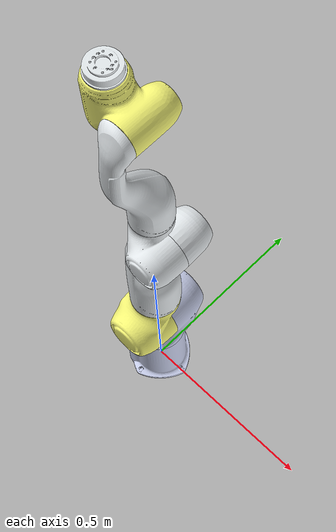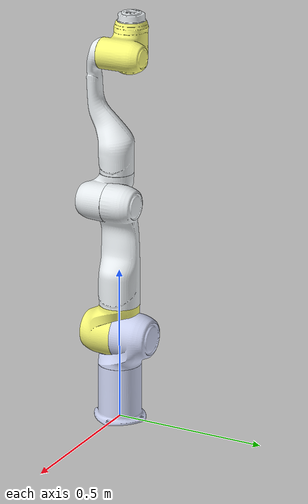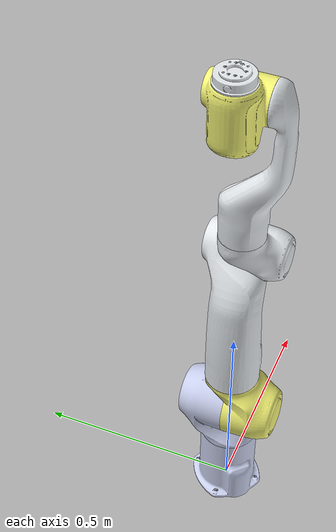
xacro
<?xml version="1.0" encoding="utf-8"?>

<robot xmlns:xacro="http://wiki.ros.org/xacro" name="diana7">
  <link name="world">
      <origin
        xyz="0 0 0"
        rpy="0 0 0" />
  </link>

  <link name="base_link">
    <inertial>
      <origin
        xyz="0.00153097191906452 0.00152031034664837 0.0524230280849149"
        rpy="0 0 0" />
      <mass value="1.33110743457779" />
      <inertia
        ixx="0.00695879790529406"
        ixy="9.99328685258342E-05"
        ixz="7.99577031212481E-05"
        iyy="0.00695365531716522"
        iyz="7.90796997368543E-05"
        izz="0.00729823323321907" />
    </inertial>
    <visual>
      <origin
        xyz="0 0 0"
        rpy="0 0 0" />
      <geometry>
        <mesh filename="package://Diana7_Magnet/meshes/visual/base.obj" />
      </geometry>
      <material name="">
        <color rgba="0.796078431372549 0.823529411764706 0.937254901960784 1" />
      </material>
    </visual>
    <collision>
      <origin
        xyz="0 0 0"
        rpy="0 0 0" />
      <geometry>
        <mesh filename="package://Diana7_Magnet/meshes/collision/base.stl" />
      </geometry>
    </collision>
  </link>

  <joint name="base_joint" type="fixed">
    <parent link="world"/>
    <child link="base_link"/>
  </joint>

  <link name="link_1">
    <inertial>
      <origin
        xyz="5.5234067920554E-05  -0.0254878204920178 0.0355441421264809"
        rpy="0 0 0" />
      <mass value="1.09025546409174" />
      <inertia
        ixx="0.00585031196428369"
        ixy="1.4630349447555E-07"
        ixz="1.35351687162397E-06"
        iyy="0.00645496952227061"
        iyz="-0.00104800484741808"
        izz="0.00459531291521244" />
    </inertial>
    <visual>
      <origin
        xyz="0 0 0"
        rpy="3.1415926531795866 0 0" />
      <geometry>
        <mesh filename="package://Diana7_Magnet/meshes/visual/link_1.obj" />
      </geometry>
      <material name="">
        <color rgba="0.796078431372549 0.823529411764706 0.937254901960784 1" />
      </material>
    </visual>
    <collision>
      <origin
        xyz="0 0 0"
        rpy="3.1415926531795866 0 0" />
      <geometry>
        <mesh filename="package://Diana7_Magnet/meshes/collision/link_1.stl" />
      </geometry>
    </collision>
  </link>

  <joint name="joint_1" type="revolute">
    <origin
      xyz="0.0 -2.9150689157e-12 0.2856"
      rpy="-3.1415926535795866 0.0 -0.0" />
    <parent link="base_link" />
    <child link="link_1" />
    <axis xyz="0 0 1" />
    <limit
      lower="-3.12"
      upper="3.12"
      effort="235"
      velocity="2.61" />
  </joint>

  <link name="link_2">
    <inertial>
      <origin
        xyz="-3.62724763868157E-06 -0.0292741005087307 -0.041280769252073"
        rpy="0 0 0" />
      <mass value="1.09515454908799" />
      <inertia
        ixx="0.00575817488413533"
        ixy="4.92454490330888E-07"
        ixz="-5.75758988171004E-07"
        iyy="0.00452592941277235"
        iyz="0.00135206824645357"
        izz="0.0058904584276842" />
    </inertial>
    <visual>
      <origin
        xyz="0 0 0"
        rpy="0 0 0" />
      <geometry>
        <mesh filename="package://Diana7_Magnet/meshes/visual/link_2.obj" />
      </geometry>
      <material name="">
        <color rgba="0.980392156862745 0.980392156862745 0.470588235294118 1" />
      </material>
    </visual>
    <collision>
      <origin
        xyz="0 0 0"
        rpy="0 0 0" />
      <geometry>
        <mesh filename="package://Diana7_Magnet/meshes/collision/link_2.stl" />
      </geometry>
    </collision>
  </link>

  <joint name="joint_2" type="revolute">
    <origin
      xyz="0.0 -0.0 0.0"
      rpy="1.57079632679 -0.0 0.0" />
    <parent link="link_1" />
    <child link="link_2" />
    <axis xyz="0 0 1" />
    <limit
      lower="-1.57"
      upper="1.57"
      effort="235"
      velocity="2.618" />
  </joint>

  <link name="link_3">
    <inertial>
      <origin
        xyz="0.0114318213510691 -0.0101707598694861 0.15131695375217"
        rpy="0 3.1415926531795866 3.1415926531795866" />
      <mass value="2.01686690128149" />
      <inertia
        ixx="0.0362470020041464"
        ixy="-0.00099203786071914"
        ixz="-0.00494440140493448"
        iyy="0.0374857206758098"
        iyz="-0.00313859974095155"
        izz="0.00905850119342719" />
    </inertial>
    <visual>
      <origin
        xyz="0 0 0"
        rpy="3.1415926531795866 0 0" />
      <geometry>
        <mesh filename="package://Diana7_Magnet/meshes/visual/link_3.obj" />
      </geometry>
      <material name="">
        <color rgba="0.898039215686275 0.917647058823529 0.929411764705882 1" />
      </material>
    </visual>
    <collision>
      <origin
        xyz="0 0 0"
        rpy="3.1415926531795866 0 0" />
      <geometry>
        <mesh
          filename="package://Diana7_Magnet/meshes/collision/link_3.stl" />
      </geometry>
    </collision>
  </link>

  <joint name="joint_3" type="revolute">
    <origin
      xyz="0.0 -0.4586 -2.24557565126e-12"
      rpy="-1.57079632679 0.0 0.0" />
    <parent link="link_2" />
    <child link="link_3" />
    <axis xyz="0 0 1" />
    <limit
      lower="-3.12"
      upper="3.12"
      effort="111"
      velocity="2.61" />
  </joint>

  <link name="link_4">
    <inertial>
      <origin
        xyz="-0.0240716370537192 -0.0235631728011761 -0.0366858174253844"
        rpy="0 0 0" />
      <mass value="0.849743349506889" />
      <inertia
        ixx="0.00313444335639628"
        ixy="-0.000681243351041131"
        ixz="0.000725380047812207"
        iyy="0.00333717642442852"
        iyz="0.000771057559109157"
        izz="0.0034847726349841" />
    </inertial>
    <visual>
      <origin
        xyz="0 0 0"
        rpy="0 0 0" />
      <geometry>
        <mesh filename="package://Diana7_Magnet/meshes/visual/link_4.obj" />
      </geometry>
      <material name="">
        <color rgba="0.898039215686275 0.917647058823529 0.929411764705882 1" />
      </material>
    </visual>
    <collision>
      <origin
        xyz="0 0 0"
        rpy="0 0 0" />
      <geometry>
        <mesh filename="package://Diana7_Magnet/meshes/collision/link_4.stl" />
      </geometry>
    </collision>
  </link>

  <joint name="joint_4" type="revolute">
    <origin
      xyz="0.065 -0.0 0.0"
      rpy="1.57079632679 -0.0 0.0" />
    <parent link="link_3" />
    <child link="link_4" />
    <axis xyz="0 0 1" />
    <limit
      lower="0"
      upper="3.05"
      effort="111"
      velocity="2.61" />
  </joint>

  <link name="link_5">
    <inertial>
      <origin
        xyz="-0.00867148011164554 0.0383499684802812 0.188626"
        rpy="0 3.1415926531795866 3.1415926531795866" />
      <mass value="1.20580396965245" />
      <inertia
        ixx="0.0218436427570802"
        ixy="-0.000309747330693722"
        ixz="0.00089039094846826"
        iyy="0.0205896836785318"
        iyz="0.00493573923914426"
        izz="0.00372270106038425" />
    </inertial>
    <visual>
      <origin
        xyz="0 0 -0.02162"
        rpy="3.1415926531795866 0 0" />
      <geometry>
        <mesh filename="package://Diana7_Magnet/meshes/visual/link_5.obj" />
      </geometry>
      <material name="">
        <color rgba="0.898039215686275 0.917647058823529 0.929411764705882 1" />
      </material>
    </visual>
    <collision>
      <origin
        xyz="0 0 -0.02162"
        rpy="3.1415926531795866 0 0" />
      <geometry>
        <mesh filename="package://Diana7_Magnet/meshes/collision/link_5.stl" />
      </geometry>
    </collision>
  </link>

  <joint name="joint_5" type="revolute">
    <origin
      xyz="-0.0528 -0.4554 -2.22990656691e-12"
      rpy="-1.57079632679 0.0 0.0" />
    <parent link="link_4" />
    <child link="link_5" />
    <axis xyz="0 0 1" />
    <limit
      lower="-3.12"
      upper="3.12"
      effort="54"
      velocity="3.14" />
  </joint>

  <link name="link_6">
    <inertial>
      <origin
        xyz="0.045897226241036 0.00848579821002571 -0.0078257811617596"
        rpy="0 3.1415926531795866 3.1415926531795866" />
      <mass value="0.847157564562275" />
      <inertia
        ixx="0.00286926864109097"
        ixy="-0.000341664135091818"
        ixz="-0.000318082297486923"
        iyy="0.0043294660443987"
        iyz="-5.82962380662208E-05"
        izz="0.00437292566725527" />
    </inertial>
    <visual>
      <origin
        xyz="0 0 0"
        rpy="3.1415926531795866 0 3.14159265359" />
      <geometry>
        <mesh filename="package://Diana7_Magnet/meshes/visual/link_6.obj" />
      </geometry>
      <material name="">
        <color rgba="0.980392156862745 0.980392156862745 0.470588235294118 1" />
      </material>
    </visual>
    <collision>
      <origin
        xyz="0 0 0"
        rpy="3.1415926531795866 0 3.14159265359" />
      <geometry>
        <mesh filename="package://Diana7_Magnet/meshes/collision/link_6.stl" />
      </geometry>
    </collision>
  </link>

  <joint name="joint_6" type="revolute">
    <origin
      xyz="-0.0122 0.0 0.0"
      rpy="1.57079632679 -1.0206823934513925e-11 -3.141592653589793" />
    <parent link="link_5" />
    <child link="link_6" />
    <axis xyz="0 0 1" />
    <limit
      lower="-3.12"
      upper="3.12"
      effort="54"
      velocity="3.14" />
  </joint>

  <link name="link_7">
    <inertial>
      <origin
        xyz="0.00117005127509708 5.03191940906655E-06 0.0151381784822231"
        rpy="0 0 0" />
      <mass value="0.233956150459573" />
      <inertia
        ixx="0.000142027360977168"
        ixy="1.76426389345981E-08"
        ixz="2.14635741626268E-07"
        iyy="0.000134421724783865"
        iyz="-1.29988689037464E-09"
        izz="0.000240242798572463" />
    </inertial>
    <visual>
      <origin
        xyz="0 0 0"
        rpy="0 0 0" />
      <geometry>
        <mesh filename="package://Diana7_Magnet/meshes/visual/link_7.obj" />
      </geometry>
      <material name="">
        <color rgba="0.898039215686275 0.917647058823529 0.929411764705882 1" />
      </material>
    </visual>
    <collision>
      <origin
        xyz="0 0 0"
        rpy="0 0 0" />
      <geometry>
        <mesh filename="package://Diana7_Magnet/meshes/collision/link_7.stl" />
      </geometry>
    </collision>
  </link>

  <joint name="joint_7" type="revolute">
    <origin
      xyz="0.087 -0.1169 -5.72411237751e-13"
      rpy="-1.57079632679 0.0 0.0" />
    <parent link="link_6" />
    <child link="link_7" />
    <axis xyz="0 0 1" />
    <limit
      lower="-3.12"
      upper="3.12"
      effort="54"
      velocity="3.14" />
  </joint>

</robot>
